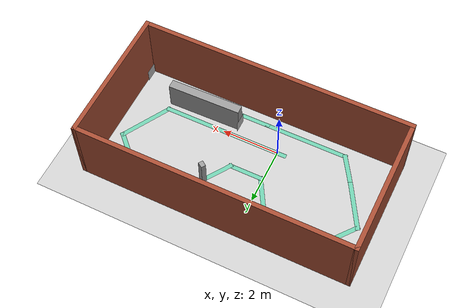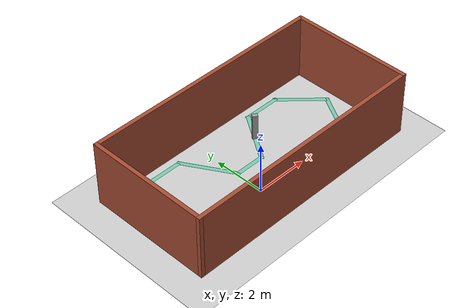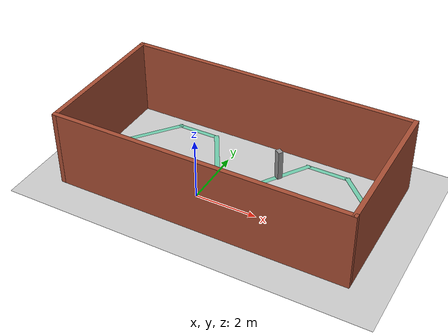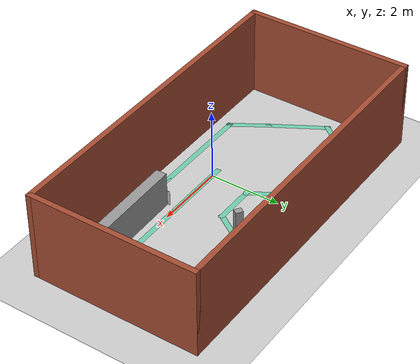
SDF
<sdf version="1.7">
 <world name="default">
  <light name="sun" type="directional">
   <pose>0 0 10 0 -0 0</pose>
   <diffuse>0.8 0.8 0.8 1</diffuse>
   <specular>0.2 0.2 0.2 1</specular>
   <attenuation>
    <range>1000</range>
    <constant>0.9</constant>
    <linear>0.01</linear>
    <quadratic>0.001</quadratic>
   </attenuation>
   <direction>-0.5 0.1 -0.9</direction>
   <spot><inner_angle>0</inner_angle><outer_angle>0</outer_angle><falloff>0</falloff></spot>
  </light>
  <model name="ground_plane">
   <static>1</static>
   <link name="link">
    <collision name="collision">
     <geometry><plane><normal>0 0 1</normal><size>100 100</size></plane></geometry>
     <surface>
      <contact><collide_bitmask>65535</collide_bitmask></contact>
      <friction><ode><mu>100</mu><mu2>50</mu2></ode></friction>
     </surface>
    </collision>
    <visual name="visual">
     <cast_shadows>0</cast_shadows>
     <geometry><plane><normal>0 0 1</normal><size>100 100</size></plane></geometry>
     <material>
      <script><uri>file://media/materials/scripts/gazebo.material</uri><name>Gazebo/Grey</name></script>
     </material>
    </visual>
   </link>
  </model>
  <gravity>0 0 -9.8</gravity>
  <magnetic_field>6e-06 2.3e-05 -4.2e-05</magnetic_field>
  <atmosphere type="adiabatic"/>
  <physics type="ode">
   <max_step_size>0.001</max_step_size>
   <real_time_factor>1</real_time_factor>
   <real_time_update_rate>1000</real_time_update_rate>
  </physics>
  <scene><ambient>0.4 0.4 0.4 1</ambient><background>0.7 0.7 0.7 1</background><shadows>1</shadows></scene>
  <spherical_coordinates>
   <surface_model>EARTH_WGS84</surface_model>
   <latitude_deg>0</latitude_deg>
   <longitude_deg>0</longitude_deg>
   <elevation>0</elevation>
   <heading_deg>0</heading_deg>
  </spherical_coordinates>
  <model name="son">
   <pose>0.75757 1.00909 0 0 -0 0</pose>
   <link name="Wall_0">
    <collision name="Wall_0_Collision">
     <geometry><box><size>4.5 0.15 0</size></box></geometry>
     <pose>0 0 0.0005 0 -0 0</pose>
    </collision>
    <visual name="Wall_0_Visual">
     <pose>0 0 0.0005 0 -0 0</pose>
     <geometry><box><size>4.5 0.15 0</size></box></geometry>
     <material>
      <script><uri>file://media/materials/scripts/gazebo.material</uri><name>Gazebo/Grey</name></script>
      <ambient>0.435294 0.796078 0.67451 1</ambient>
     </material>
     <meta><layer>0</layer></meta>
    </visual>
    <pose>1.17531 -1.00722 0 0 -0 3.14159</pose>
   </link>
   <link name="Wall_10">
    <collision name="Wall_10_Collision">
     <geometry><box><size>1.5 0.15 0</size></box></geometry>
     <pose>0 0 0.0005 0 -0 0</pose>
    </collision>
    <visual name="Wall_10_Visual">
     <pose>0 0 0.0005 0 -0 0</pose>
     <geometry><box><size>1.5 0.15 0</size></box></geometry>
     <material>
      <script><uri>file://media/materials/scripts/gazebo.material</uri><name>Gazebo/Grey</name></script>
      <ambient>0.435294 0.796078 0.67451 1</ambient>
     </material>
     <meta><layer>0</layer></meta>
    </visual>
    <pose>-2.38027 1.8888 0 0 -0 3.14159</pose>
   </link>
   <link name="Wall_15">
    <collision name="Wall_15_Collision">
     <geometry><box><size>2.02563 0.15 0</size></box></geometry>
     <pose>0 0 0.0005 0 -0 0</pose>
    </collision>
    <visual name="Wall_15_Visual">
     <pose>0 0 0.0005 0 -0 0</pose>
     <geometry><box><size>2.02563 0.15 0</size></box></geometry>
     <material>
      <script><uri>file://media/materials/scripts/gazebo.material</uri><name>Gazebo/Grey</name></script>
      <ambient>0.435294 0.796078 0.67451 1</ambient>
     </material>
     <meta><layer>0</layer></meta>
    </visual>
    <pose>-3.62387 1.15329 0 0 -0 -2.24005</pose>
   </link>
   <link name="Wall_16">
    <collision name="Wall_16_Collision">
     <geometry><box><size>1.75 0.15 0</size></box></geometry>
     <pose>0 0 0.0005 0 -0 0</pose>
    </collision>
    <visual name="Wall_16_Visual">
     <pose>0 0 0.0005 0 -0 0</pose>
     <geometry><box><size>1.75 0.15 0</size></box></geometry>
     <material>
      <script><uri>file://media/materials/scripts/gazebo.material</uri><name>Gazebo/Grey</name></script>
      <ambient>0.435294 0.796078 0.67451 1</ambient>
     </material>
     <meta><layer>0</layer></meta>
    </visual>
    <pose>-3.80569 -0.275042 0 0 -0 -1.0472</pose>
   </link>
   <link name="Wall_17">
    <collision name="Wall_17_Collision">
     <geometry><box><size>1.21242 0.15 0</size></box></geometry>
     <pose>0 0 0.0005 0 -0 0</pose>
    </collision>
    <visual name="Wall_17_Visual">
     <pose>0 0 0.0005 0 -0 0</pose>
     <geometry><box><size>1.21242 0.15 0</size></box></geometry>
     <material>
      <script><uri>file://media/materials/scripts/gazebo.material</uri><name>Gazebo/Grey</name></script>
      <ambient>0.435294 0.796078 0.67451 1</ambient>
     </material>
     <meta><layer>0</layer></meta>
    </visual>
    <pose>-3.12369 -1.41804 0 0 -0 -1.01118</pose>
   </link>
   <link name="Wall_18">
    <collision name="Wall_18_Collision">
     <geometry><box><size>3 0.15 0</size></box></geometry>
     <pose>0 0 0.0005 0 -0 0</pose>
    </collision>
    <visual name="Wall_18_Visual">
     <pose>0 0 0.0005 0 -0 0</pose>
     <geometry><box><size>3 0.15 0</size></box></geometry>
     <material>
      <script><uri>file://media/materials/scripts/gazebo.material</uri><name>Gazebo/Grey</name></script>
      <ambient>0.435294 0.796078 0.67451 1</ambient>
     </material>
     <meta><layer>0</layer></meta>
    </visual>
    <pose>-1.41669 -1.86822 0 0 -0 0</pose>
   </link>
   <link name="Wall_19">
    <collision name="Wall_19_Collision">
     <geometry><box><size>3.53924 0.15 0</size></box></geometry>
     <pose>0 0 0.0005 0 -0 0</pose>
    </collision>
    <visual name="Wall_19_Visual">
     <pose>0 0 0.0005 0 -0 0</pose>
     <geometry><box><size>3.53924 0.15 0</size></box></geometry>
     <material>
      <script><uri>file://media/materials/scripts/gazebo.material</uri><name>Gazebo/Grey</name></script>
      <ambient>0.435294 0.796078 0.67451 1</ambient>
     </material>
     <meta><layer>0</layer></meta>
    </visual>
    <pose>1.70292 -1.86333 0 0 -0 0.002884</pose>
   </link>
   <link name="Wall_2">
    <collision name="Wall_2_Collision">
     <geometry><box><size>1.98829 0.15 0</size></box></geometry>
     <pose>0 0 0.0005 0 -0 0</pose>
    </collision>
    <visual name="Wall_2_Visual">
     <pose>0 0 0.0005 0 -0 0</pose>
     <geometry><box><size>1.98829 0.15 0</size></box></geometry>
     <material>
      <script><uri>file://media/materials/scripts/gazebo.material</uri><name>Gazebo/Grey</name></script>
      <ambient>0.435294 0.796078 0.67451 1</ambient>
     </material>
     <meta><layer>0</layer></meta>
    </visual>
    <pose>3.80881 -0.210722 0 0 -0 -2.09311</pose>
   </link>
   <link name="Wall_22">
    <collision name="Wall_22_Collision">
     <geometry><box><size>4.75 0.15 2.5</size></box></geometry>
     <pose>0 0 1.25 0 -0 0</pose>
    </collision>
    <visual name="Wall_22_Visual">
     <pose>0 0 1.25 0 -0 0</pose>
     <geometry><box><size>4.75 0.15 2.5</size></box></geometry>
     <material>
      <script><uri>file://media/materials/scripts/gazebo.material</uri><name>Gazebo/Bricks</name></script>
      <ambient>1 1 1 1</ambient>
     </material>
     <meta><layer>0</layer></meta>
    </visual>
    <pose>4.675 0 0 0 -0 -1.5708</pose>
   </link>
   <link name="Wall_23">
    <collision name="Wall_23_Collision">
     <geometry><box><size>9.5 0.15 2.5</size></box></geometry>
     <pose>0 0 1.25 0 -0 0</pose>
    </collision>
    <visual name="Wall_23_Visual">
     <pose>0 0 1.25 0 -0 0</pose>
     <geometry><box><size>9.5 0.15 2.5</size></box></geometry>
     <material>
      <script><uri>file://media/materials/scripts/gazebo.material</uri><name>Gazebo/Bricks</name></script>
      <ambient>1 1 1 1</ambient>
     </material>
     <meta><layer>0</layer></meta>
    </visual>
    <pose>0 -2.3 0 0 -0 3.14159</pose>
   </link>
   <link name="Wall_24">
    <collision name="Wall_24_Collision">
     <geometry><box><size>4.75 0.15 2.5</size></box></geometry>
     <pose>0 0 1.25 0 -0 0</pose>
    </collision>
    <visual name="Wall_24_Visual">
     <pose>0 0 1.25 0 -0 0</pose>
     <geometry><box><size>4.75 0.15 2.5</size></box></geometry>
     <material>
      <script><uri>file://media/materials/scripts/gazebo.material</uri><name>Gazebo/Bricks</name></script>
      <ambient>1 1 1 1</ambient>
     </material>
     <meta><layer>0</layer></meta>
    </visual>
    <pose>-4.675 0 0 0 -0 1.5708</pose>
   </link>
   <link name="Wall_25">
    <collision name="Wall_25_Collision">
     <geometry><box><size>9.5 0.15 2.5</size></box></geometry>
     <pose>0 0 1.25 0 -0 0</pose>
    </collision>
    <visual name="Wall_25_Visual">
     <pose>0 0 1.25 0 -0 0</pose>
     <geometry><box><size>9.5 0.15 2.5</size></box></geometry>
     <material>
      <script><uri>file://media/materials/scripts/gazebo.material</uri><name>Gazebo/Bricks</name></script>
      <ambient>1 1 1 1</ambient>
     </material>
     <meta><layer>0</layer></meta>
    </visual>
    <pose>0 2.3 0 0 -0 0</pose>
   </link>
   <link name="Wall_5">
    <collision name="Wall_5_Collision">
     <geometry><box><size>1.99203 0.15 0</size></box></geometry>
     <pose>0 0 0.0005 0 -0 0</pose>
    </collision>
    <visual name="Wall_5_Visual">
     <pose>0 0 0.0005 0 -0 0</pose>
     <geometry><box><size>1.99203 0.15 0</size></box></geometry>
     <material>
      <script><uri>file://media/materials/scripts/gazebo.material</uri><name>Gazebo/Grey</name></script>
      <ambient>0.435294 0.796078 0.67451 1</ambient>
     </material>
     <meta><layer>0</layer></meta>
    </visual>
    <pose>3.61331 1.23428 0 0 -0 2.36042</pose>
   </link>
   <link name="Wall_6">
    <collision name="Wall_6_Collision">
     <geometry><box><size>1.5 0.15 0</size></box></geometry>
     <pose>0 0 0.0005 0 -0 0</pose>
    </collision>
    <visual name="Wall_6_Visual">
     <pose>0 0 0.0005 0 -0 0</pose>
     <geometry><box><size>1.5 0.15 0</size></box></geometry>
     <material>
      <script><uri>file://media/materials/scripts/gazebo.material</uri><name>Gazebo/Grey</name></script>
      <ambient>0.435294 0.796078 0.67451 1</ambient>
     </material>
     <meta><layer>0</layer></meta>
    </visual>
    <pose>2.28431 1.88278 0 0 -0 3.14159</pose>
   </link>
   <link name="Wall_7">
    <collision name="Wall_7_Collision">
     <geometry><box><size>2.26937 0.15 0</size></box></geometry>
     <pose>0 0 0.0005 0 -0 0</pose>
    </collision>
    <visual name="Wall_7_Visual">
     <pose>0 0 0.0005 0 -0 0</pose>
     <geometry><box><size>2.26937 0.15 0</size></box></geometry>
     <material>
      <script><uri>file://media/materials/scripts/gazebo.material</uri><name>Gazebo/Grey</name></script>
      <ambient>0.435294 0.796078 0.67451 1</ambient>
     </material>
     <meta><layer>0</layer></meta>
    </visual>
    <pose>1.02431 0.999278 0 0 -0 -2.15566</pose>
   </link>
   <link name="Wall_8">
    <collision name="Wall_8_Collision">
     <geometry><box><size>1.25 0.15 0</size></box></geometry>
     <pose>0 0 0.0005 0 -0 0</pose>
    </collision>
    <visual name="Wall_8_Visual">
     <pose>0 0 0.0005 0 -0 0</pose>
     <geometry><box><size>1.25 0.15 0</size></box></geometry>
     <material>
      <script><uri>file://media/materials/scripts/gazebo.material</uri><name>Gazebo/Grey</name></script>
      <ambient>0.435294 0.796078 0.67451 1</ambient>
     </material>
     <meta><layer>0</layer></meta>
    </visual>
    <pose>-0.110693 0.115778 0 0 -0 3.14159</pose>
   </link>
   <link name="Wall_9">
    <collision name="Wall_9_Collision">
     <geometry><box><size>2.20117 0.15 0</size></box></geometry>
     <pose>0 0 0.0005 0 -0 0</pose>
    </collision>
    <visual name="Wall_9_Visual">
     <pose>0 0 0.0005 0 -0 0</pose>
     <geometry><box><size>2.20117 0.15 0</size></box></geometry>
     <material>
      <script><uri>file://media/materials/scripts/gazebo.material</uri><name>Gazebo/Grey</name></script>
      <ambient>0.435294 0.796078 0.67451 1</ambient>
     </material>
     <meta><layer>0</layer></meta>
    </visual>
    <pose>-1.17637 1.00229 0 0 -0 2.09764</pose>
   </link>
   <static>1</static>
  </model>
  <model name="unit_box">
   <pose>2.88036 -0.400541 0.499927 -1e-06 -5.7e-05 0.019103</pose>
   <link name="link">
    <inertial>
     <mass>1</mass>
     <inertia>
      <ixx>0.166667</ixx>
      <ixy>0</ixy>
      <ixz>0</ixz>
      <iyy>0.166667</iyy>
      <iyz>0</iyz>
      <izz>0.166667</izz>
     </inertia>
    </inertial>
    <collision name="collision"><geometry><box><size>2.56504 0.298414 1</size></box></geometry></collision>
    <visual name="visual">
     <geometry><box><size>2.56504 0.298414 1</size></box></geometry>
     <material>
      <script><name>Gazebo/Grey</name><uri>file://media/materials/scripts/gazebo.material</uri></script>
     </material>
    </visual>
   </link>
  </model>
  <model name="qr_fstart">
   <static>1</static>
   <link name="qr_fstart_link">
    <pose>0 0 0.001 0 -0 1.5708</pose>
    <visual name="visual_qr_fstart">
     <cast_shadows>0</cast_shadows>
     <geometry><box><size>0.44 0.44 0.001</size></box></geometry>
     <material>
      <script>
       <uri>model://qr_fstart/materials/scripts</uri>
       <uri>model://qr_fstart/materials/textures</uri>
       <name>qr_fstart/qr_fstart</name>
      </script>
     </material>
    </visual>
   </link>
   <pose>1.58974 -0.414797 0.237009 -4.6e-05 -1.56374 5e-05</pose>
  </model>
  <model name="qr_fstop">
   <static>1</static>
   <link name="qr_fstop_link">
    <pose>0 0 0.001 0 -0 1.5708</pose>
    <visual name="visual_qr_fstop">
     <cast_shadows>0</cast_shadows>
     <geometry><box><size>0.44 0.44 0.001</size></box></geometry>
     <material>
      <script>
       <uri>model://qr_fstop/materials/scripts</uri>
       <uri>model://qr_fstop/materials/textures</uri>
       <name>qr_fstop/qr_fstop</name>
      </script>
     </material>
    </visual>
   </link>
   <pose>5.32108 -0.987488 0.229359 -3.7e-05 -1.56195 4.1e-05</pose>
  </model>
  <model name="unit_box_0">
   <pose>1.77058 1.9919 0.5 -1e-06 0 -0.590752</pose>
   <link name="link">
    <inertial>
     <mass>1</mass>
     <inertia>
      <ixx>0.166667</ixx>
      <ixy>0</ixy>
      <ixz>0</ixz>
      <iyy>0.166667</iyy>
      <iyz>0</iyz>
      <izz>0.166667</izz>
     </inertia>
    </inertial>
    <collision name="collision"><geometry><box><size>0.202687 0.162609 1</size></box></geometry></collision>
    <visual name="visual">
     <geometry><box><size>0.202687 0.162609 1</size></box></geometry>
     <material>
      <script><name>Gazebo/Grey</name><uri>file://media/materials/scripts/gazebo.material</uri></script>
     </material>
    </visual>
   </link>
  </model>
 </world>
</sdf>
